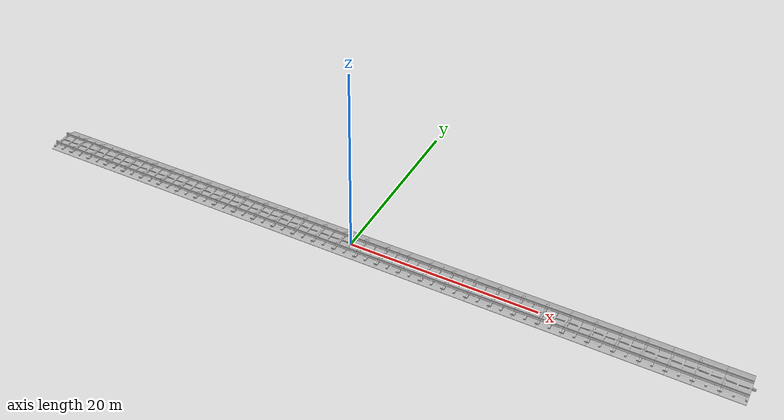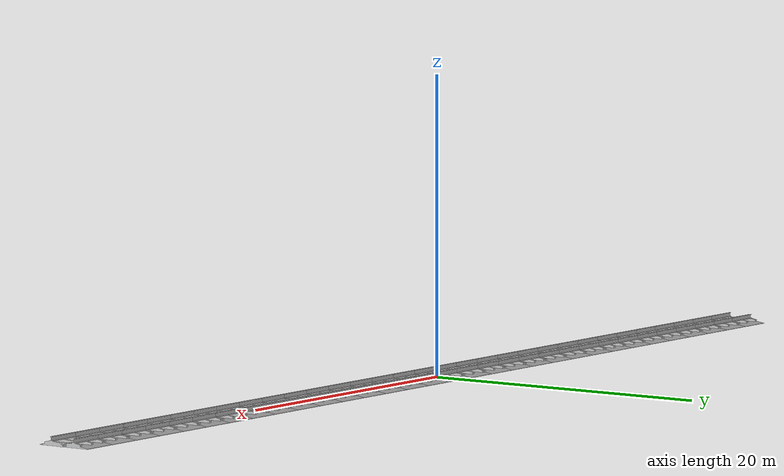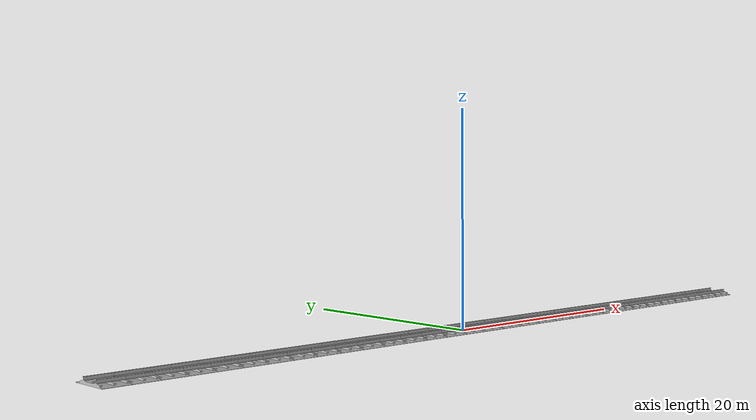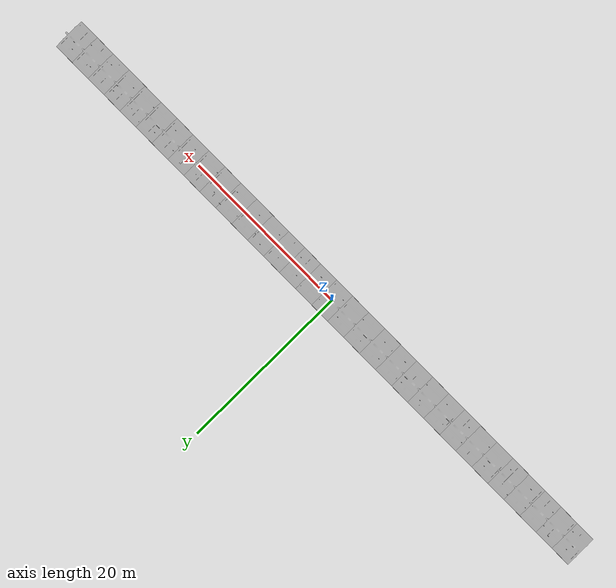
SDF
<?xml version='1.0'?>
<sdf version='1.7'>
  <model name='railway32'>
    <model name='railway16'>
      <model name='railway8'>
        <model name='railway4'>
          <model name='railway2'>
            <model name='railway'>
              <static>1</static>
              <link name='link'>
                <visual name='visual'>
                  <geometry>
                    <mesh>
                      <uri>model://railway/meshes/model.dae</uri>
                    </mesh>
                  </geometry>
                </visual>
              </link>
              <pose>1.19969 -6.9e-05 0 0 -0 0</pose>
            </model>
            <model name='railway_0'>
              <static>1</static>
              <link name='link'>
                <visual name='visual'>
                  <geometry>
                    <mesh>
                      <uri>model://railway/meshes/model.dae</uri>
                    </mesh>
                  </geometry>
                </visual>
              </link>
              <pose>-1.1997 6.9e-05 0 0 -0 0</pose>
            </model>
            <static>0</static>
            <allow_auto_disable>1</allow_auto_disable>
            <pose>-2.39934 4.6e-05 0 0 -0 0</pose>
          </model>
          <model name='railway2_0'>
            <model name='railway'>
              <static>1</static>
              <link name='link'>
                <visual name='visual'>
                  <geometry>
                    <mesh>
                      <uri>model://railway/meshes/model.dae</uri>
                    </mesh>
                  </geometry>
                </visual>
              </link>
              <pose>1.19969 -6.9e-05 0 0 -0 0</pose>
            </model>
            <model name='railway_0'>
              <static>1</static>
              <link name='link'>
                <visual name='visual'>
                  <geometry>
                    <mesh>
                      <uri>model://railway/meshes/model.dae</uri>
                    </mesh>
                  </geometry>
                </visual>
              </link>
              <pose>-1.1997 6.9e-05 0 0 -0 0</pose>
            </model>
            <static>0</static>
            <allow_auto_disable>1</allow_auto_disable>
            <pose>2.39934 -5.4e-05 0 0 -0 0</pose>
          </model>
          <static>0</static>
          <allow_auto_disable>1</allow_auto_disable>
          <pose>4.79871 -0.000105 0 0 -0 0</pose>
        </model>
        <model name='railway4_0'>
          <model name='railway2'>
            <model name='railway'>
              <static>1</static>
              <link name='link'>
                <visual name='visual'>
                  <geometry>
                    <mesh>
                      <uri>model://railway/meshes/model.dae</uri>
                    </mesh>
                  </geometry>
                </visual>
              </link>
              <pose>1.19969 -6.9e-05 0 0 -0 0</pose>
            </model>
            <model name='railway_0'>
              <static>1</static>
              <link name='link'>
                <visual name='visual'>
                  <geometry>
                    <mesh>
                      <uri>model://railway/meshes/model.dae</uri>
                    </mesh>
                  </geometry>
                </visual>
              </link>
              <pose>-1.1997 6.9e-05 0 0 -0 0</pose>
            </model>
            <static>0</static>
            <allow_auto_disable>1</allow_auto_disable>
            <pose>-2.39934 4.6e-05 0 0 -0 0</pose>
          </model>
          <model name='railway2_0'>
            <model name='railway'>
              <static>1</static>
              <link name='link'>
                <visual name='visual'>
                  <geometry>
                    <mesh>
                      <uri>model://railway/meshes/model.dae</uri>
                    </mesh>
                  </geometry>
                </visual>
              </link>
              <pose>1.19969 -6.9e-05 0 0 -0 0</pose>
            </model>
            <model name='railway_0'>
              <static>1</static>
              <link name='link'>
                <visual name='visual'>
                  <geometry>
                    <mesh>
                      <uri>model://railway/meshes/model.dae</uri>
                    </mesh>
                  </geometry>
                </visual>
              </link>
              <pose>-1.1997 6.9e-05 0 0 -0 0</pose>
            </model>
            <static>0</static>
            <allow_auto_disable>1</allow_auto_disable>
            <pose>2.39934 -5.4e-05 0 0 -0 0</pose>
          </model>
          <static>0</static>
          <allow_auto_disable>1</allow_auto_disable>
          <pose>-4.79871 9.6e-05 0 0 -0 0</pose>
        </model>
        <static>0</static>
        <allow_auto_disable>1</allow_auto_disable>
        <pose>9.5973 -0.000147 0 0 -0 0</pose>
      </model>
      <model name='railway8_0'>
        <model name='railway4'>
          <model name='railway2'>
            <model name='railway'>
              <static>1</static>
              <link name='link'>
                <visual name='visual'>
                  <geometry>
                    <mesh>
                      <uri>model://railway/meshes/model.dae</uri>
                    </mesh>
                  </geometry>
                </visual>
              </link>
              <pose>1.19969 -6.9e-05 0 0 -0 0</pose>
            </model>
            <model name='railway_0'>
              <static>1</static>
              <link name='link'>
                <visual name='visual'>
                  <geometry>
                    <mesh>
                      <uri>model://railway/meshes/model.dae</uri>
                    </mesh>
                  </geometry>
                </visual>
              </link>
              <pose>-1.1997 6.9e-05 0 0 -0 0</pose>
            </model>
            <static>0</static>
            <allow_auto_disable>1</allow_auto_disable>
            <pose>-2.39934 4.6e-05 0 0 -0 0</pose>
          </model>
          <model name='railway2_0'>
            <model name='railway'>
              <static>1</static>
              <link name='link'>
                <visual name='visual'>
                  <geometry>
                    <mesh>
                      <uri>model://railway/meshes/model.dae</uri>
                    </mesh>
                  </geometry>
                </visual>
              </link>
              <pose>1.19969 -6.9e-05 0 0 -0 0</pose>
            </model>
            <model name='railway_0'>
              <static>1</static>
              <link name='link'>
                <visual name='visual'>
                  <geometry>
                    <mesh>
                      <uri>model://railway/meshes/model.dae</uri>
                    </mesh>
                  </geometry>
                </visual>
              </link>
              <pose>-1.1997 6.9e-05 0 0 -0 0</pose>
            </model>
            <static>0</static>
            <allow_auto_disable>1</allow_auto_disable>
            <pose>2.39934 -5.4e-05 0 0 -0 0</pose>
          </model>
          <static>0</static>
          <allow_auto_disable>1</allow_auto_disable>
          <pose>4.79871 -0.000105 0 0 -0 0</pose>
        </model>
        <model name='railway4_0'>
          <model name='railway2'>
            <model name='railway'>
              <static>1</static>
              <link name='link'>
                <visual name='visual'>
                  <geometry>
                    <mesh>
                      <uri>model://railway/meshes/model.dae</uri>
                    </mesh>
                  </geometry>
                </visual>
              </link>
              <pose>1.19969 -6.9e-05 0 0 -0 0</pose>
            </model>
            <model name='railway_0'>
              <static>1</static>
              <link name='link'>
                <visual name='visual'>
                  <geometry>
                    <mesh>
                      <uri>model://railway/meshes/model.dae</uri>
                    </mesh>
                  </geometry>
                </visual>
              </link>
              <pose>-1.1997 6.9e-05 0 0 -0 0</pose>
            </model>
            <static>0</static>
            <allow_auto_disable>1</allow_auto_disable>
            <pose>-2.39934 4.6e-05 0 0 -0 0</pose>
          </model>
          <model name='railway2_0'>
            <model name='railway'>
              <static>1</static>
              <link name='link'>
                <visual name='visual'>
                  <geometry>
                    <mesh>
                      <uri>model://railway/meshes/model.dae</uri>
                    </mesh>
                  </geometry>
                </visual>
              </link>
              <pose>1.19969 -6.9e-05 0 0 -0 0</pose>
            </model>
            <model name='railway_0'>
              <static>1</static>
              <link name='link'>
                <visual name='visual'>
                  <geometry>
                    <mesh>
                      <uri>model://railway/meshes/model.dae</uri>
                    </mesh>
                  </geometry>
                </visual>
              </link>
              <pose>-1.1997 6.9e-05 0 0 -0 0</pose>
            </model>
            <static>0</static>
            <allow_auto_disable>1</allow_auto_disable>
            <pose>2.39934 -5.4e-05 0 0 -0 0</pose>
          </model>
          <static>0</static>
          <allow_auto_disable>1</allow_auto_disable>
          <pose>-4.79871 9.6e-05 0 0 -0 0</pose>
        </model>
        <static>0</static>
        <allow_auto_disable>1</allow_auto_disable>
        <pose>-9.59731 0.000145 0 0 -0 0</pose>
      </model>
      <static>0</static>
      <allow_auto_disable>1</allow_auto_disable>
      <pose>19.1948 -0.00044 0 0 -0 0</pose>
    </model>
    <model name='railway16_0'>
      <model name='railway8'>
        <model name='railway4'>
          <model name='railway2'>
            <model name='railway'>
              <static>1</static>
              <link name='link'>
                <visual name='visual'>
                  <geometry>
                    <mesh>
                      <uri>model://railway/meshes/model.dae</uri>
                    </mesh>
                  </geometry>
                </visual>
              </link>
              <pose>1.19969 -6.9e-05 0 0 -0 0</pose>
            </model>
            <model name='railway_0'>
              <static>1</static>
              <link name='link'>
                <visual name='visual'>
                  <geometry>
                    <mesh>
                      <uri>model://railway/meshes/model.dae</uri>
                    </mesh>
                  </geometry>
                </visual>
              </link>
              <pose>-1.1997 6.9e-05 0 0 -0 0</pose>
            </model>
            <static>0</static>
            <allow_auto_disable>1</allow_auto_disable>
            <pose>-2.39934 4.6e-05 0 0 -0 0</pose>
          </model>
          <model name='railway2_0'>
            <model name='railway'>
              <static>1</static>
              <link name='link'>
                <visual name='visual'>
                  <geometry>
                    <mesh>
                      <uri>model://railway/meshes/model.dae</uri>
                    </mesh>
                  </geometry>
                </visual>
              </link>
              <pose>1.19969 -6.9e-05 0 0 -0 0</pose>
            </model>
            <model name='railway_0'>
              <static>1</static>
              <link name='link'>
                <visual name='visual'>
                  <geometry>
                    <mesh>
                      <uri>model://railway/meshes/model.dae</uri>
                    </mesh>
                  </geometry>
                </visual>
              </link>
              <pose>-1.1997 6.9e-05 0 0 -0 0</pose>
            </model>
            <static>0</static>
            <allow_auto_disable>1</allow_auto_disable>
            <pose>2.39934 -5.4e-05 0 0 -0 0</pose>
          </model>
          <static>0</static>
          <allow_auto_disable>1</allow_auto_disable>
          <pose>4.79871 -0.000105 0 0 -0 0</pose>
        </model>
        <model name='railway4_0'>
          <model name='railway2'>
            <model name='railway'>
              <static>1</static>
              <link name='link'>
                <visual name='visual'>
                  <geometry>
                    <mesh>
                      <uri>model://railway/meshes/model.dae</uri>
                    </mesh>
                  </geometry>
                </visual>
              </link>
              <pose>1.19969 -6.9e-05 0 0 -0 0</pose>
            </model>
            <model name='railway_0'>
              <static>1</static>
              <link name='link'>
                <visual name='visual'>
                  <geometry>
                    <mesh>
                      <uri>model://railway/meshes/model.dae</uri>
                    </mesh>
                  </geometry>
                </visual>
              </link>
              <pose>-1.1997 6.9e-05 0 0 -0 0</pose>
            </model>
            <static>0</static>
            <allow_auto_disable>1</allow_auto_disable>
            <pose>-2.39934 4.6e-05 0 0 -0 0</pose>
          </model>
          <model name='railway2_0'>
            <model name='railway'>
              <static>1</static>
              <link name='link'>
                <visual name='visual'>
                  <geometry>
                    <mesh>
                      <uri>model://railway/meshes/model.dae</uri>
                    </mesh>
                  </geometry>
                </visual>
              </link>
              <pose>1.19969 -6.9e-05 0 0 -0 0</pose>
            </model>
            <model name='railway_0'>
              <static>1</static>
              <link name='link'>
                <visual name='visual'>
                  <geometry>
                    <mesh>
                      <uri>model://railway/meshes/model.dae</uri>
                    </mesh>
                  </geometry>
                </visual>
              </link>
              <pose>-1.1997 6.9e-05 0 0 -0 0</pose>
            </model>
            <static>0</static>
            <allow_auto_disable>1</allow_auto_disable>
            <pose>2.39934 -5.4e-05 0 0 -0 0</pose>
          </model>
          <static>0</static>
          <allow_auto_disable>1</allow_auto_disable>
          <pose>-4.79871 9.6e-05 0 0 -0 0</pose>
        </model>
        <static>0</static>
        <allow_auto_disable>1</allow_auto_disable>
        <pose>9.5973 -0.000147 0 0 -0 0</pose>
      </model>
      <model name='railway8_0'>
        <model name='railway4'>
          <model name='railway2'>
            <model name='railway'>
              <static>1</static>
              <link name='link'>
                <visual name='visual'>
                  <geometry>
                    <mesh>
                      <uri>model://railway/meshes/model.dae</uri>
                    </mesh>
                  </geometry>
                </visual>
              </link>
              <pose>1.19969 -6.9e-05 0 0 -0 0</pose>
            </model>
            <model name='railway_0'>
              <static>1</static>
              <link name='link'>
                <visual name='visual'>
                  <geometry>
                    <mesh>
                      <uri>model://railway/meshes/model.dae</uri>
                    </mesh>
                  </geometry>
                </visual>
              </link>
              <pose>-1.1997 6.9e-05 0 0 -0 0</pose>
            </model>
            <static>0</static>
            <allow_auto_disable>1</allow_auto_disable>
            <pose>-2.39934 4.6e-05 0 0 -0 0</pose>
          </model>
          <model name='railway2_0'>
            <model name='railway'>
              <static>1</static>
              <link name='link'>
                <visual name='visual'>
                  <geometry>
                    <mesh>
                      <uri>model://railway/meshes/model.dae</uri>
                    </mesh>
                  </geometry>
                </visual>
              </link>
              <pose>1.19969 -6.9e-05 0 0 -0 0</pose>
            </model>
            <model name='railway_0'>
              <static>1</static>
              <link name='link'>
                <visual name='visual'>
                  <geometry>
                    <mesh>
                      <uri>model://railway/meshes/model.dae</uri>
                    </mesh>
                  </geometry>
                </visual>
              </link>
              <pose>-1.1997 6.9e-05 0 0 -0 0</pose>
            </model>
            <static>0</static>
            <allow_auto_disable>1</allow_auto_disable>
            <pose>2.39934 -5.4e-05 0 0 -0 0</pose>
          </model>
          <static>0</static>
          <allow_auto_disable>1</allow_auto_disable>
          <pose>4.79871 -0.000105 0 0 -0 0</pose>
        </model>
        <model name='railway4_0'>
          <model name='railway2'>
            <model name='railway'>
              <static>1</static>
              <link name='link'>
                <visual name='visual'>
                  <geometry>
                    <mesh>
                      <uri>model://railway/meshes/model.dae</uri>
                    </mesh>
                  </geometry>
                </visual>
              </link>
              <pose>1.19969 -6.9e-05 0 0 -0 0</pose>
            </model>
            <model name='railway_0'>
              <static>1</static>
              <link name='link'>
                <visual name='visual'>
                  <geometry>
                    <mesh>
                      <uri>model://railway/meshes/model.dae</uri>
                    </mesh>
                  </geometry>
                </visual>
              </link>
              <pose>-1.1997 6.9e-05 0 0 -0 0</pose>
            </model>
            <static>0</static>
            <allow_auto_disable>1</allow_auto_disable>
            <pose>-2.39934 4.6e-05 0 0 -0 0</pose>
          </model>
          <model name='railway2_0'>
            <model name='railway'>
              <static>1</static>
              <link name='link'>
                <visual name='visual'>
                  <geometry>
                    <mesh>
                      <uri>model://railway/meshes/model.dae</uri>
                    </mesh>
                  </geometry>
                </visual>
              </link>
              <pose>1.19969 -6.9e-05 0 0 -0 0</pose>
            </model>
            <model name='railway_0'>
              <static>1</static>
              <link name='link'>
                <visual name='visual'>
                  <geometry>
                    <mesh>
                      <uri>model://railway/meshes/model.dae</uri>
                    </mesh>
                  </geometry>
                </visual>
              </link>
              <pose>-1.1997 6.9e-05 0 0 -0 0</pose>
            </model>
            <static>0</static>
            <allow_auto_disable>1</allow_auto_disable>
            <pose>2.39934 -5.4e-05 0 0 -0 0</pose>
          </model>
          <static>0</static>
          <allow_auto_disable>1</allow_auto_disable>
          <pose>-4.79871 9.6e-05 0 0 -0 0</pose>
        </model>
        <static>0</static>
        <allow_auto_disable>1</allow_auto_disable>
        <pose>-9.59731 0.000145 0 0 -0 0</pose>
      </model>
      <static>0</static>
      <allow_auto_disable>1</allow_auto_disable>
      <pose>-19.1948 0.000444 0 0 -0 0</pose>
    </model>
    <static>0</static>
    <allow_auto_disable>1</allow_auto_disable>
  </model>
</sdf>
